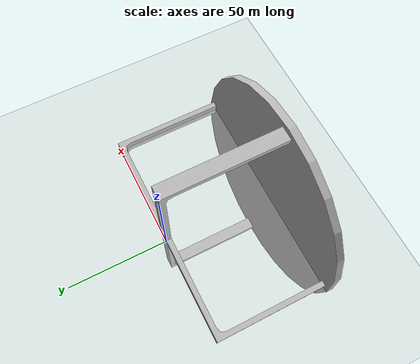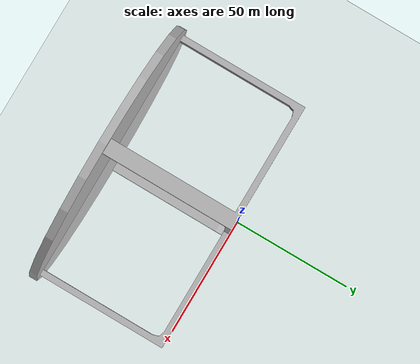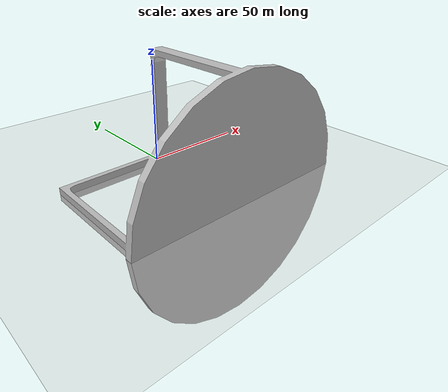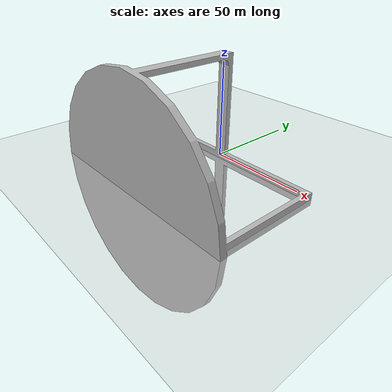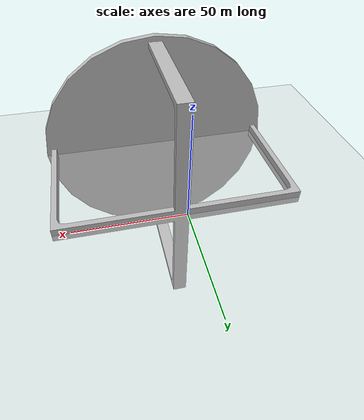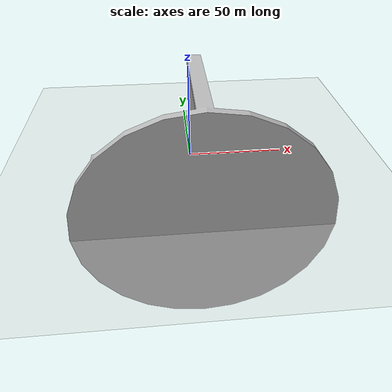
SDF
<?xml version="1.0"?>
<sdf version="1.4">
  <world name="default">
    <include>
      <uri>model://ground_plane</uri>
    </include>
    <include>
      <uri>model://sun</uri>
    </include>
    <model name="coffeetable">
      <pose>2.6 0 0  1.5708 0 0</pose>
      <static>true</static>
      <link name="body">
        <visual name="visual">
          <geometry>
            <mesh>
				<uri>model://coffeetable/meshes/coffeetable.obj</uri>
				<scale>1.3 1.3 1.3</scale>
            </mesh>
          </geometry>
        </visual>
    	<collision name="collision">
          <geometry>
            <mesh>
				<uri>model://coffeetable/meshes/coffeetable.obj</uri>
				<scale>1.3 1.3 1.3</scale>
            </mesh>
          </geometry>
		</collision>
      </link>
    </model>
    <model name="bookshelf">
      <pose>2.8327 -1.586 0  1.5708 0 0</pose>
      <static>true</static>
      <link name="body">
        <visual name="visual">
          <geometry>
            <mesh>
				<uri>model://bookshelf/meshes/bookshelf.obj</uri>
				<scale>1.3 1.3 1.3</scale>
            </mesh>
          </geometry>
        </visual>
    	<collision name="collision">
          <geometry>
            <mesh>
				<uri>model://bookshelf/meshes/bookshelf.obj</uri>
				<scale>1.3 1.3 1.3</scale>
            </mesh>
          </geometry>
		</collision>
      </link>
    </model>
    <model name="cracker1">
      <pose>2.6 0 1  0 0 3.14159</pose>
      <static>0</static>
      <link name="body">
        <visual name="visual">
          <geometry>
            <mesh>
				<uri>model://cracker/meshes/cracker.dae</uri>
				<scale>0.15 0.15 0.15</scale>
            </mesh>
          </geometry>
        </visual>
    	<collision name="collision">
          <geometry>
            <mesh>
				<uri>model://cracker/meshes/cracker.dae</uri>
				<scale>0.15 0.15 0.15</scale>
            </mesh>
          </geometry>
		</collision>
        <inertial>
          <mass>0.411</mass>
          <inertia>
            <ixx>0.002365</ixx>
            <ixy>0.000000</ixy>
            <ixz>0.000000</ixz>
            <iyy>0.001634</iyy>
            <iyz>0.000000</iyz>
            <izz>0.000978</izz>
          </inertia>
        </inertial>
      </link>
    </model>
    <model name="sugar_box1">
      <pose>2.6 0.39 1  1.5708 0 0</pose>
      <static>0</static>
      <link name="body">
        <visual name="visual">
          <geometry>
            <mesh>
				<uri>model://sugarbox/meshes/sugar.obj</uri>
				<scale>0.15 0.15 0.15</scale>
            </mesh>
          </geometry>
        </visual>
    	<collision name="collision">
          <geometry>
            <mesh>
				<uri>model://sugarbox/meshes/sugar.obj</uri>
				<scale>0.15 0.15 0.15</scale>
            </mesh>
          </geometry>
		</collision>
      </link>
    </model>
    <model name="sugar_box2">
      <pose>2.8 -0.3 0.9  1.5708 0 0.987</pose>
      <static>0</static>
      <link name="body">
        <visual name="visual">
          <geometry>
            <mesh>
				<uri>model://sugarbox/meshes/sugar.obj</uri>
				<scale>0.15 0.15 0.15</scale>
            </mesh>
          </geometry>
        </visual>
    	<collision name="collision">
          <geometry>
            <mesh>
				<uri>model://sugarbox/meshes/sugar.obj</uri>
				<scale>0.15 0.15 0.15</scale>
            </mesh>
          </geometry>
		</collision>
      </link>
    </model>
    <model name="apple">
      <pose>2.5 -0.3 1  1.5708 0.98347 0.987</pose>
      <static>0</static>
      <link name="body">
        <visual name="visual">
          <geometry>
            <mesh>
				<uri>model://apple/meshes/apple.obj</uri>
				<scale>0.15 0.15 0.15</scale>
            </mesh>
          </geometry>
        </visual>
    	<collision name="collision">
          <geometry>
            <mesh>
				<uri>model://apple/meshes/apple.obj</uri>
				<scale>0.15 0.15 0.15</scale>
            </mesh>
          </geometry>
		</collision>
      </link>
    </model>
  </world>
</sdf>
